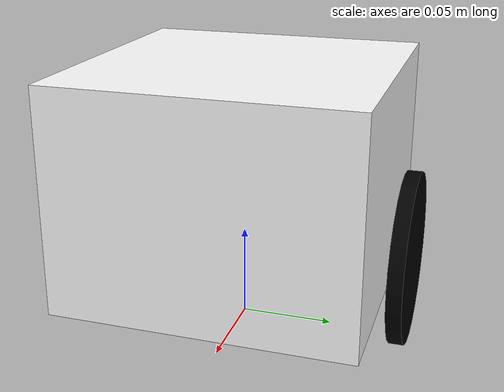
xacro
<?xml version= "1.0"?>
<robot name="robot">

  <link name="base_link">
    <visual>
      <geometry>
        <box size="0.16 0.16 0.12"/>
      </geometry>
       <origin rpy="0 0 0" xyz="0 0 0.085"/>
      <material name="white">
        <color rgba="1 1 1 1"/>
      </material>
    </visual>
  </link>

  <link name="lwheel">
    <visual>
      <geometry>
        <cylinder length="0.008" radius="0.046"/>
      </geometry>
      <origin rpy="0 0 0" xyz="0 0 0"/>
      <material name="black">
        <color rgba="0 0 0 1"/>
      </material>
    </visual>
  </link>

  <joint name="base_to_lwheel" type="fixed">
    <parent link="base_link"/>
    <child link="lwheel"/>
    <origin xyz="0 0.09 0.046" rpy="1.5708 0 0"/>
  </joint>

  <link name="rwheel">
    <visual>
      <geometry>
        <cylinder length="0.008" radius="0.046"/>
      </geometry>
      <origin rpy="0 0 0" xyz="0 0 0"/>
      <material name="black">
        <color rgba="0 0 0 1"/>
      </material>
    </visual>
  </link>

  <joint name="base_to_rwheel" type="fixed">
    <parent link="base_link"/>
    <child link="rwheel"/>
    <origin xyz="0 -0.09 0.046" rpy="-1.5708 0 0"/>
  </joint>

</robot>
